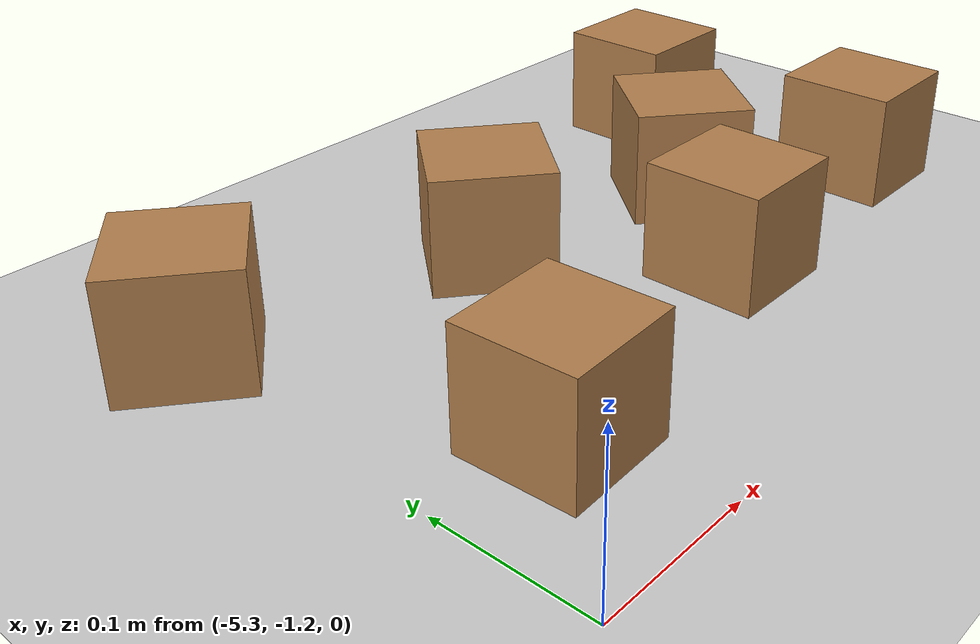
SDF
<sdf version="1.6">
 <world name="default">
  <model name="ground_plane">
   <static>1</static>
   <link name="link">
    <collision name="collision">
     <geometry><plane><normal>0 0 1</normal><size>100 100</size></plane></geometry>
     <surface><friction><ode><mu>100</mu><mu2>50</mu2></ode></friction></surface>
    </collision>
    <visual name="visual">
     <cast_shadows>0</cast_shadows>
     <geometry><plane><normal>0 0 1</normal><size>100 100</size></plane></geometry>
     <material>
      <script><uri>file://media/materials/scripts/gazebo.material</uri><name>Gazebo/Grey</name></script>
     </material>
    </visual>
   </link>
  </model>
  <model name="wood_cube_7_5cm">
   <link name="link">
    <pose>0 0 0.0375 0 -0 0</pose>
    <inertial>
     <mass>0.2249</mass>
     <inertia>
      <ixx>0.000210844</ixx>
      <ixy>0</ixy>
      <ixz>0</ixz>
      <iyy>0.000210844</iyy>
      <iyz>0</iyz>
      <izz>0.000210844</izz>
     </inertia>
    </inertial>
    <collision name="collision">
     <geometry><box><size>0.075 0.075 0.075</size></box></geometry>
     <surface>
      <contact>
       <poissons_ratio>0.347</poissons_ratio>
       <elastic_modulus>8.8e+09</elastic_modulus>
       <ode><kp>100000</kp><kd>100</kd><max_vel>100</max_vel><min_depth>0.001</min_depth></ode>
      </contact>
      <friction>
       <torsional>
        <coefficient>1</coefficient>
        <use_patch_radius>0</use_patch_radius>
        <surface_radius>0.01</surface_radius>
       </torsional>
      </friction>
     </surface>
    </collision>
    <visual name="visual">
     <geometry><box><size>0.075 0.075 0.075</size></box></geometry>
     <material>
      <script><uri>file://media/materials/scripts/gazebo.material</uri><name>Gazebo/Wood</name></script>
     </material>
    </visual>
   </link>
   <pose>-5.02546 -1.07869 -0.001005 0 -0 1.2e-05</pose>
  </model>
  <model name="wood_cube_7_5cm_clone_7_clone_0">
   <link name="link">
    <pose>0 0 0.0375 0 -0 0</pose>
    <inertial>
     <mass>0.2249</mass>
     <inertia>
      <ixx>0.000210844</ixx>
      <ixy>0</ixy>
      <ixz>0</ixz>
      <iyy>0.000210844</iyy>
      <iyz>0</iyz>
      <izz>0.000210844</izz>
     </inertia>
    </inertial>
    <collision name="collision">
     <geometry><box><size>0.075 0.075 0.075</size></box></geometry>
     <surface>
      <contact>
       <poissons_ratio>0.347</poissons_ratio>
       <elastic_modulus>8.8e+09</elastic_modulus>
       <ode><kp>100000</kp><kd>100</kd><max_vel>100</max_vel><min_depth>0.001</min_depth></ode>
      </contact>
      <friction>
       <torsional>
        <coefficient>1</coefficient>
        <use_patch_radius>0</use_patch_radius>
        <surface_radius>0.01</surface_radius>
       </torsional>
      </friction>
     </surface>
    </collision>
    <visual name="visual">
     <geometry><box><size>0.075 0.075 0.075</size></box></geometry>
     <material>
      <script><uri>file://media/materials/scripts/gazebo.material</uri><name>Gazebo/Wood</name></script>
     </material>
    </visual>
   </link>
   <pose>-4.87624 -0.899987 -0.001005 0 -0 0</pose>
  </model>
  <model name="wood_cube_7_5cm_clone_7_clone_1">
   <link name="link">
    <pose>0 0 0.0375 0 -0 0</pose>
    <inertial>
     <mass>0.2249</mass>
     <inertia>
      <ixx>0.000210844</ixx>
      <ixy>0</ixy>
      <ixz>0</ixz>
      <iyy>0.000210844</iyy>
      <iyz>0</iyz>
      <izz>0.000210844</izz>
     </inertia>
    </inertial>
    <collision name="collision">
     <geometry><box><size>0.075 0.075 0.075</size></box></geometry>
     <surface>
      <contact>
       <poissons_ratio>0.347</poissons_ratio>
       <elastic_modulus>8.8e+09</elastic_modulus>
       <ode><kp>100000</kp><kd>100</kd><max_vel>100</max_vel><min_depth>0.001</min_depth></ode>
      </contact>
      <friction>
       <torsional>
        <coefficient>1</coefficient>
        <use_patch_radius>0</use_patch_radius>
        <surface_radius>0.01</surface_radius>
       </torsional>
      </friction>
     </surface>
    </collision>
    <visual name="visual">
     <geometry><box><size>0.075 0.075 0.075</size></box></geometry>
     <material>
      <script><uri>file://media/materials/scripts/gazebo.material</uri><name>Gazebo/Wood</name></script>
     </material>
    </visual>
   </link>
   <pose>-5.11135 -0.959806 -0.001005 0 0 -0.685305</pose>
  </model>
  <model name="wood_cube_7_5cm_clone_7_clone_3">
   <link name="link">
    <pose>0 0 0.0375 0 -0 0</pose>
    <inertial>
     <mass>0.2249</mass>
     <inertia>
      <ixx>0.000210844</ixx>
      <ixy>0</ixy>
      <ixz>0</ixz>
      <iyy>0.000210844</iyy>
      <iyz>0</iyz>
      <izz>0.000210844</izz>
     </inertia>
    </inertial>
    <collision name="collision">
     <geometry><box><size>0.075 0.075 0.075</size></box></geometry>
     <surface>
      <contact>
       <poissons_ratio>0.347</poissons_ratio>
       <elastic_modulus>8.8e+09</elastic_modulus>
       <ode><kp>100000</kp><kd>100</kd><max_vel>100</max_vel><min_depth>0.001</min_depth></ode>
      </contact>
      <friction>
       <torsional>
        <coefficient>1</coefficient>
        <use_patch_radius>0</use_patch_radius>
        <surface_radius>0.01</surface_radius>
       </torsional>
      </friction>
     </surface>
    </collision>
    <visual name="visual">
     <geometry><box><size>0.075 0.075 0.075</size></box></geometry>
     <material>
      <script><uri>file://media/materials/scripts/gazebo.material</uri><name>Gazebo/Wood</name></script>
     </material>
    </visual>
   </link>
   <pose>-4.85182 -1.06434 -0.001005 0 -0 0</pose>
  </model>
  <model name="wood_cube_7_5cm_clone_7_clone_4">
   <link name="link">
    <pose>0 0 0.0375 0 -0 0</pose>
    <inertial>
     <mass>0.2249</mass>
     <inertia>
      <ixx>0.000210844</ixx>
      <ixy>0</ixy>
      <ixz>0</ixz>
      <iyy>0.000210844</iyy>
      <iyz>0</iyz>
      <izz>0.000210844</izz>
     </inertia>
    </inertial>
    <collision name="collision">
     <geometry><box><size>0.075 0.075 0.075</size></box></geometry>
     <surface>
      <contact>
       <poissons_ratio>0.347</poissons_ratio>
       <elastic_modulus>8.8e+09</elastic_modulus>
       <ode><kp>100000</kp><kd>100</kd><max_vel>100</max_vel><min_depth>0.001</min_depth></ode>
      </contact>
      <friction>
       <torsional>
        <coefficient>1</coefficient>
        <use_patch_radius>0</use_patch_radius>
        <surface_radius>0.01</surface_radius>
       </torsional>
      </friction>
     </surface>
    </collision>
    <visual name="visual">
     <geometry><box><size>0.075 0.075 0.075</size></box></geometry>
     <material>
      <script><uri>file://media/materials/scripts/gazebo.material</uri><name>Gazebo/Wood</name></script>
     </material>
    </visual>
   </link>
   <pose>-4.95967 -0.992197 -0.001005 0 0 -0.692422</pose>
  </model>
  <model name="wood_cube_7_5cm_clone_7_clone_6">
   <link name="link">
    <pose>0 0 0.0375 0 -0 0</pose>
    <inertial>
     <mass>0.2249</mass>
     <inertia>
      <ixx>0.000210844</ixx>
      <ixy>0</ixy>
      <ixz>0</ixz>
      <iyy>0.000210844</iyy>
      <iyz>0</iyz>
      <izz>0.000210844</izz>
     </inertia>
    </inertial>
    <collision name="collision">
     <geometry><box><size>0.075 0.075 0.075</size></box></geometry>
     <surface>
      <contact>
       <poissons_ratio>0.347</poissons_ratio>
       <elastic_modulus>8.8e+09</elastic_modulus>
       <ode><kp>100000</kp><kd>100</kd><max_vel>100</max_vel><min_depth>0.001</min_depth></ode>
      </contact>
      <friction>
       <torsional>
        <coefficient>1</coefficient>
        <use_patch_radius>0</use_patch_radius>
        <surface_radius>0.01</surface_radius>
       </torsional>
      </friction>
     </surface>
    </collision>
    <visual name="visual">
     <geometry><box><size>0.075 0.075 0.075</size></box></geometry>
     <material>
      <script><uri>file://media/materials/scripts/gazebo.material</uri><name>Gazebo/Wood</name></script>
     </material>
    </visual>
   </link>
   <pose>-5.22116 -1.11094 -0.001005 0 -0 0.047898</pose>
  </model>
  <model name="wood_cube_7_5cm_clone_7_clone_1_clone_8">
   <link name="link">
    <pose>0 0 0.0375 0 -0 0</pose>
    <inertial>
     <mass>0.2249</mass>
     <inertia>
      <ixx>0.000210844</ixx>
      <ixy>0</ixy>
      <ixz>0</ixz>
      <iyy>0.000210844</iyy>
      <iyz>0</iyz>
      <izz>0.000210844</izz>
     </inertia>
    </inertial>
    <collision name="collision">
     <geometry><box><size>0.075 0.075 0.075</size></box></geometry>
     <surface>
      <contact>
       <poissons_ratio>0.347</poissons_ratio>
       <elastic_modulus>8.8e+09</elastic_modulus>
       <ode><kp>100000</kp><kd>100</kd><max_vel>100</max_vel><min_depth>0.001</min_depth></ode>
      </contact>
      <friction>
       <torsional>
        <coefficient>1</coefficient>
        <use_patch_radius>0</use_patch_radius>
        <surface_radius>0.01</surface_radius>
       </torsional>
      </friction>
     </surface>
    </collision>
    <visual name="visual">
     <geometry><box><size>0.075 0.075 0.075</size></box></geometry>
     <material>
      <script><uri>file://media/materials/scripts/gazebo.material</uri><name>Gazebo/Wood</name></script>
     </material>
    </visual>
   </link>
   <pose>-5.2953 -0.915587 -0.001005 0 0 -0.685305</pose>
  </model>
 </world>
</sdf>
